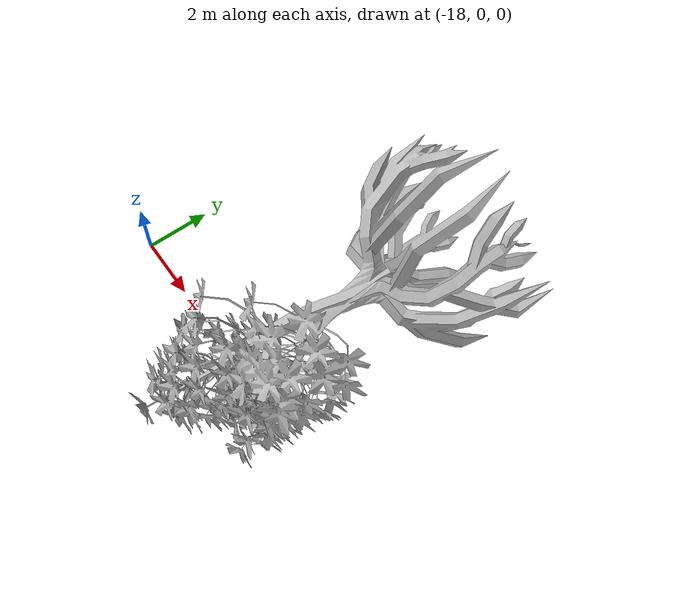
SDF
<?xml version="1.0" ?>
<sdf version="1.10">
  <model name="mangrove_05_13m">
    <pose>0 0 0 0 0 0</pose>
    <static>true</static>
    <link name="visual_only_link">
      <!-- Terrain at (14, 7) is approximately 0.03 m above world zero. -->
      <pose>-12.825 8.370 -0.20 1.5708 0 0</pose>
      <visual name="imported_mangrove_visual"><geometry><mesh><uri>model://mangrove_imported/meshes/Mangrovetree.glb</uri><scale>4.5 4.5 4.5</scale></mesh></geometry></visual>
    </link>
    <!-- The converted GLB mesh is the authoritative visual and collision geometry. -->
    <!-- A mesh collision is used so Gazebo physics and LiDAR can detect the tree shape. -->
    <link name="glb_collision_link">
      <pose>0 0 0.875 0 0 0</pose>
      <collision name="glb_mesh_collision">
        <geometry><cylinder><radius>1.1</radius><length>4.5</length></cylinder></geometry>
      </collision>
    </link>
  </model>
</sdf>
